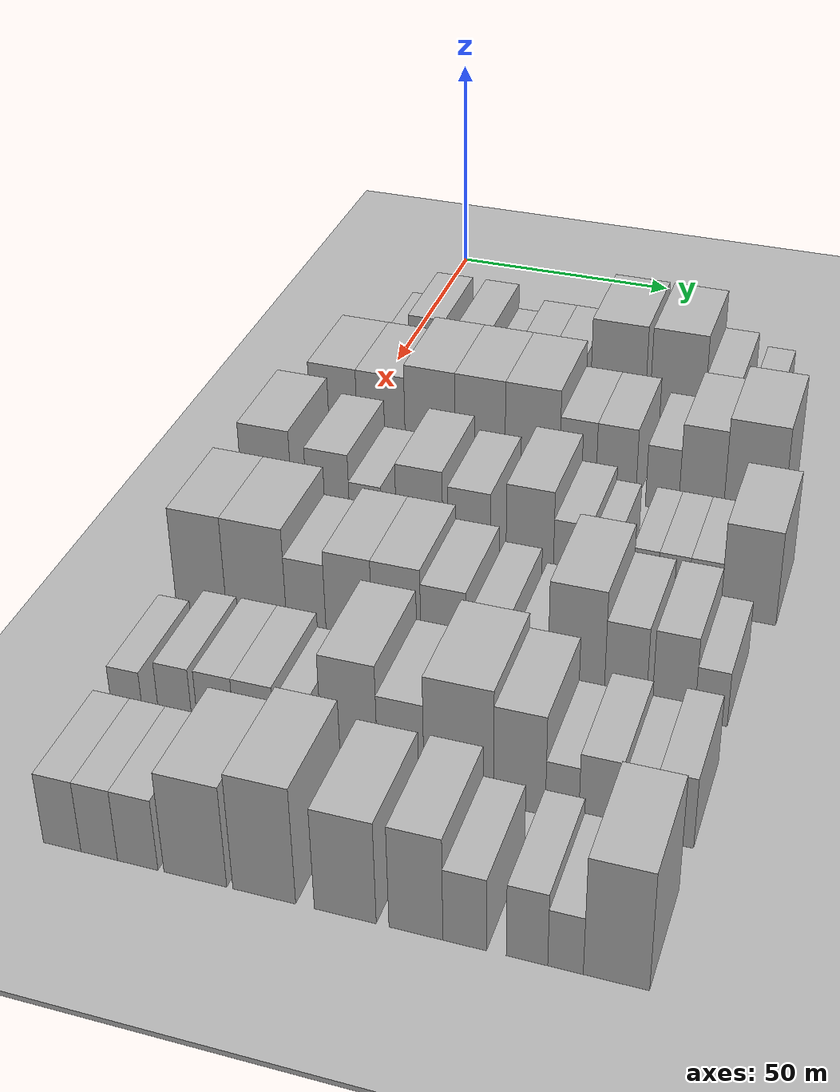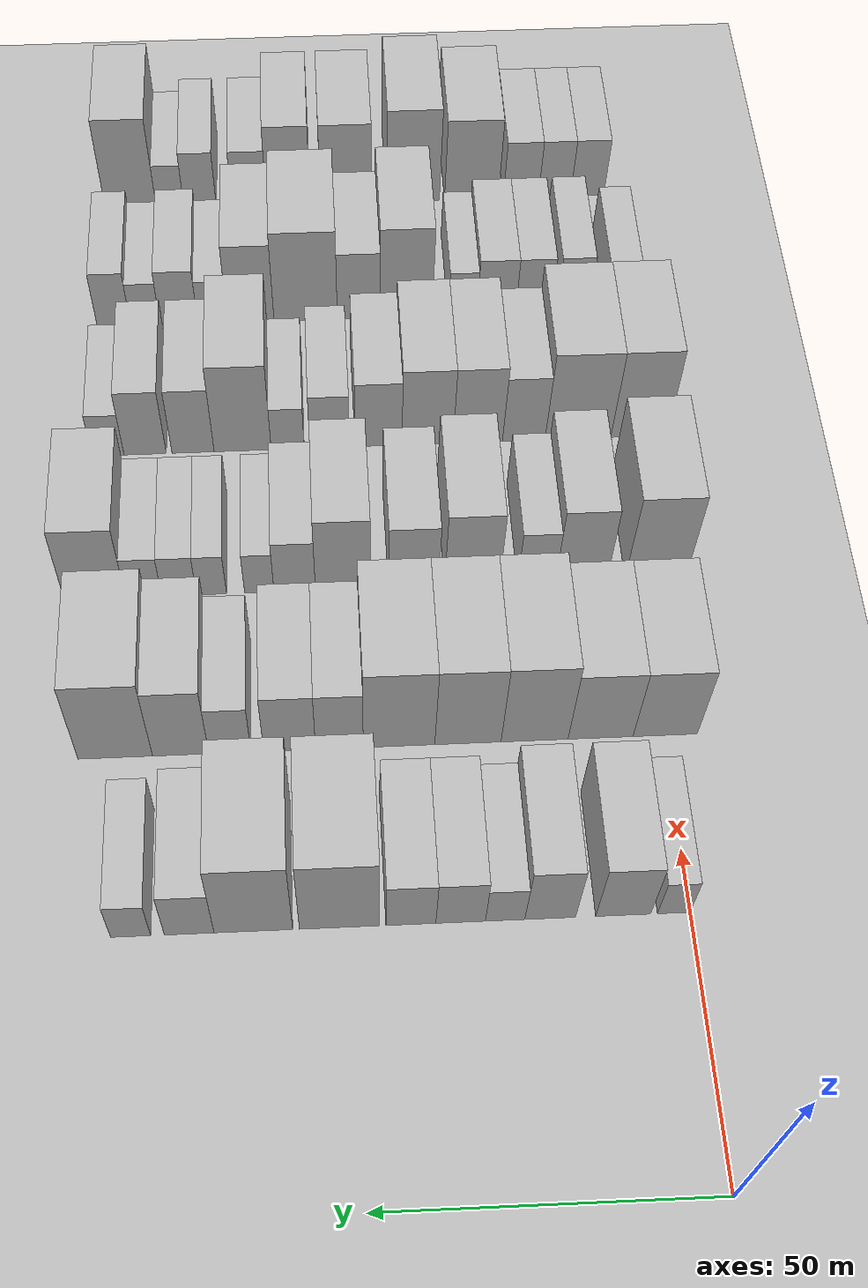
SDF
<sdf version="1.6">
 <world name="default">
  <include><name>ground_plane_1</name><uri>model://HANNAS_ground_plane</uri></include>
  <include>
   <name>ground_plane_2</name>
   <uri>model://HANNAS_ground_plane</uri>
   <pose>100 0 0  0 0 0</pose>
  </include>
  <model name="building_60">
   <static>1</static>
   <pose>50.0000 2.6766 0 0.000000 0.000000 0.000000</pose>
   <link name="link">
    <pose>0 0 6.00 0 0 0</pose>
    <collision name="collision"><geometry><box><size>20.0000 4.8449 12.0000</size></box></geometry></collision>
    <visual name="visual">
     <cast_shadows>0</cast_shadows>
     <geometry><box><size>20.0000 4.8449 12.0000</size></box></geometry>
     <material>
      <script>
       <uri>model://HANNAS_wall/materials/scripts</uri>
       <uri>model://HANNAS_wall/materials/textures</uri>
       <name>vrc/HANNAS_wall</name>
      </script>
     </material>
    </visual>
   </link>
  </model>
  <model name="building_61">
   <static>1</static>
   <pose>50.0000 10.2026 0 0.000000 0.000000 0.000000</pose>
   <link name="link">
    <pose>0 0 9.00 0 0 0</pose>
    <collision name="collision"><geometry><box><size>20.0000 8.2070 18.0000</size></box></geometry></collision>
    <visual name="visual">
     <cast_shadows>0</cast_shadows>
     <geometry><box><size>20.0000 8.2070 18.0000</size></box></geometry>
     <material>
      <script>
       <uri>model://HANNAS_wall/materials/scripts</uri>
       <uri>model://HANNAS_wall/materials/textures</uri>
       <name>vrc/HANNAS_wall</name>
      </script>
     </material>
    </visual>
   </link>
  </model>
  <model name="building_62">
   <static>1</static>
   <pose>50.0000 21.0851 0 0.000000 0.000000 0.000000</pose>
   <link name="link">
    <pose>0 0 9.00 0 0 0</pose>
    <collision name="collision"><geometry><box><size>20.0000 7.5580 18.0000</size></box></geometry></collision>
    <visual name="visual">
     <cast_shadows>0</cast_shadows>
     <geometry><box><size>20.0000 7.5580 18.0000</size></box></geometry>
     <material>
      <script>
       <uri>model://HANNAS_wall/materials/scripts</uri>
       <uri>model://HANNAS_wall/materials/textures</uri>
       <name>vrc/HANNAS_wall</name>
      </script>
     </material>
    </visual>
   </link>
  </model>
  <model name="building_63">
   <static>1</static>
   <pose>50.0000 27.7892 0 0.000000 0.000000 0.000000</pose>
   <link name="link">
    <pose>0 0 6.00 0 0 0</pose>
    <collision name="collision"><geometry><box><size>20.0000 5.8502 12.0000</size></box></geometry></collision>
    <visual name="visual">
     <cast_shadows>0</cast_shadows>
     <geometry><box><size>20.0000 5.8502 12.0000</size></box></geometry>
     <material>
      <script>
       <uri>model://HANNAS_wall/materials/scripts</uri>
       <uri>model://HANNAS_wall/materials/textures</uri>
       <name>vrc/HANNAS_wall</name>
      </script>
     </material>
    </visual>
   </link>
  </model>
  <model name="building_64">
   <static>1</static>
   <pose>50.0000 34.3873 0 0.000000 0.000000 0.000000</pose>
   <link name="link">
    <pose>0 0 7.50 0 0 0</pose>
    <collision name="collision"><geometry><box><size>20.0000 7.3461 15.0000</size></box></geometry></collision>
    <visual name="visual">
     <cast_shadows>0</cast_shadows>
     <geometry><box><size>20.0000 7.3461 15.0000</size></box></geometry>
     <material>
      <script>
       <uri>model://HANNAS_wall/materials/scripts</uri>
       <uri>model://HANNAS_wall/materials/textures</uri>
       <name>vrc/HANNAS_wall</name>
      </script>
     </material>
    </visual>
   </link>
  </model>
  <model name="building_65">
   <static>1</static>
   <pose>50.0000 41.7558 0 0.000000 0.000000 0.000000</pose>
   <link name="link">
    <pose>0 0 7.50 0 0 0</pose>
    <collision name="collision"><geometry><box><size>20.0000 7.3909 15.0000</size></box></geometry></collision>
    <visual name="visual">
     <cast_shadows>0</cast_shadows>
     <geometry><box><size>20.0000 7.3909 15.0000</size></box></geometry>
     <material>
      <script>
       <uri>model://HANNAS_wall/materials/scripts</uri>
       <uri>model://HANNAS_wall/materials/textures</uri>
       <name>vrc/HANNAS_wall</name>
      </script>
     </material>
    </visual>
   </link>
  </model>
  <model name="building_66">
   <static>1</static>
   <pose>50.0000 52.3433 0 0.000000 0.000000 0.000000</pose>
   <link name="link">
    <pose>0 0 12.00 0 0 0</pose>
    <collision name="collision"><geometry><box><size>20.0000 11.7840 24.0000</size></box></geometry></collision>
    <visual name="visual">
     <cast_shadows>0</cast_shadows>
     <geometry><box><size>20.0000 11.7840 24.0000</size></box></geometry>
     <material>
      <script>
       <uri>model://HANNAS_wall/materials/scripts</uri>
       <uri>model://HANNAS_wall/materials/textures</uri>
       <name>vrc/HANNAS_wall</name>
      </script>
     </material>
    </visual>
   </link>
  </model>
  <model name="building_67">
   <static>1</static>
   <pose>50.0000 65.0348 0 0.000000 0.000000 0.000000</pose>
   <link name="link">
    <pose>0 0 12.00 0 0 0</pose>
    <collision name="collision"><geometry><box><size>20.0000 11.5989 24.0000</size></box></geometry></collision>
    <visual name="visual">
     <cast_shadows>0</cast_shadows>
     <geometry><box><size>20.0000 11.5989 24.0000</size></box></geometry>
     <material>
      <script>
       <uri>model://HANNAS_wall/materials/scripts</uri>
       <uri>model://HANNAS_wall/materials/textures</uri>
       <name>vrc/HANNAS_wall</name>
      </script>
     </material>
    </visual>
   </link>
  </model>
  <model name="building_68">
   <static>1</static>
   <pose>50.0000 74.4866 0 0.000000 0.000000 0.000000</pose>
   <link name="link">
    <pose>0 0 7.50 0 0 0</pose>
    <collision name="collision"><geometry><box><size>20.0000 7.3048 15.0000</size></box></geometry></collision>
    <visual name="visual">
     <cast_shadows>0</cast_shadows>
     <geometry><box><size>20.0000 7.3048 15.0000</size></box></geometry>
     <material>
      <script>
       <uri>model://HANNAS_wall/materials/scripts</uri>
       <uri>model://HANNAS_wall/materials/textures</uri>
       <name>vrc/HANNAS_wall</name>
      </script>
     </material>
    </visual>
   </link>
  </model>
  <model name="building_69">
   <static>1</static>
   <pose>50.0000 83.0886 0 0.000000 0.000000 0.000000</pose>
   <link name="link">
    <pose>0 0 6.00 0 0 0</pose>
    <collision name="collision"><geometry><box><size>20.0000 5.8993 12.0000</size></box></geometry></collision>
    <visual name="visual">
     <cast_shadows>0</cast_shadows>
     <geometry><box><size>20.0000 5.8993 12.0000</size></box></geometry>
     <material>
      <script>
       <uri>model://HANNAS_wall/materials/scripts</uri>
       <uri>model://HANNAS_wall/materials/textures</uri>
       <name>vrc/HANNAS_wall</name>
      </script>
     </material>
    </visual>
   </link>
  </model>
  <model name="building_178">
   <static>1</static>
   <pose>79.0000 -0.0719 0 0.000000 0.000000 0.000000</pose>
   <link name="link">
    <pose>0 0 10.50 0 0 0</pose>
    <collision name="collision"><geometry><box><size>20.0000 10.2089 21.0000</size></box></geometry></collision>
    <visual name="visual">
     <cast_shadows>0</cast_shadows>
     <geometry><box><size>20.0000 10.2089 21.0000</size></box></geometry>
     <material>
      <script>
       <uri>model://HANNAS_wall/materials/scripts</uri>
       <uri>model://HANNAS_wall/materials/textures</uri>
       <name>vrc/HANNAS_wall</name>
      </script>
     </material>
    </visual>
   </link>
  </model>
  <model name="building_179">
   <static>1</static>
   <pose>79.0000 10.1699 0 0.000000 0.000000 0.000000</pose>
   <link name="link">
    <pose>0 0 10.50 0 0 0</pose>
    <collision name="collision"><geometry><box><size>20.0000 10.2747 21.0000</size></box></geometry></collision>
    <visual name="visual">
     <cast_shadows>0</cast_shadows>
     <geometry><box><size>20.0000 10.2747 21.0000</size></box></geometry>
     <material>
      <script>
       <uri>model://HANNAS_wall/materials/scripts</uri>
       <uri>model://HANNAS_wall/materials/textures</uri>
       <name>vrc/HANNAS_wall</name>
      </script>
     </material>
    </visual>
   </link>
  </model>
  <model name="building_180">
   <static>1</static>
   <pose>79.0000 20.6007 0 0.000000 0.000000 0.000000</pose>
   <link name="link">
    <pose>0 0 12.00 0 0 0</pose>
    <collision name="collision"><geometry><box><size>20.0000 10.5871 24.0000</size></box></geometry></collision>
    <visual name="visual">
     <cast_shadows>0</cast_shadows>
     <geometry><box><size>20.0000 10.5871 24.0000</size></box></geometry>
     <material>
      <script>
       <uri>model://HANNAS_wall/materials/scripts</uri>
       <uri>model://HANNAS_wall/materials/textures</uri>
       <name>vrc/HANNAS_wall</name>
      </script>
     </material>
    </visual>
   </link>
  </model>
  <model name="building_181">
   <static>1</static>
   <pose>79.0000 31.1213 0 0.000000 0.000000 0.000000</pose>
   <link name="link">
    <pose>0 0 12.00 0 0 0</pose>
    <collision name="collision"><geometry><box><size>20.0000 10.4541 24.0000</size></box></geometry></collision>
    <visual name="visual">
     <cast_shadows>0</cast_shadows>
     <geometry><box><size>20.0000 10.4541 24.0000</size></box></geometry>
     <material>
      <script>
       <uri>model://HANNAS_wall/materials/scripts</uri>
       <uri>model://HANNAS_wall/materials/textures</uri>
       <name>vrc/HANNAS_wall</name>
      </script>
     </material>
    </visual>
   </link>
  </model>
  <model name="building_182">
   <static>1</static>
   <pose>79.0000 41.9779 0 0.000000 0.000000 0.000000</pose>
   <link name="link">
    <pose>0 0 12.00 0 0 0</pose>
    <collision name="collision"><geometry><box><size>20.0000 11.2591 24.0000</size></box></geometry></collision>
    <visual name="visual">
     <cast_shadows>0</cast_shadows>
     <geometry><box><size>20.0000 11.2591 24.0000</size></box></geometry>
     <material>
      <script>
       <uri>model://HANNAS_wall/materials/scripts</uri>
       <uri>model://HANNAS_wall/materials/textures</uri>
       <name>vrc/HANNAS_wall</name>
      </script>
     </material>
    </visual>
   </link>
  </model>
  <model name="building_183">
   <static>1</static>
   <pose>79.0000 51.3438 0 0.000000 0.000000 0.000000</pose>
   <link name="link">
    <pose>0 0 9.00 0 0 0</pose>
    <collision name="collision"><geometry><box><size>20.0000 7.4727 18.0000</size></box></geometry></collision>
    <visual name="visual">
     <cast_shadows>0</cast_shadows>
     <geometry><box><size>20.0000 7.4727 18.0000</size></box></geometry>
     <material>
      <script>
       <uri>model://HANNAS_wall/materials/scripts</uri>
       <uri>model://HANNAS_wall/materials/textures</uri>
       <name>vrc/HANNAS_wall</name>
      </script>
     </material>
    </visual>
   </link>
  </model>
  <model name="building_184">
   <static>1</static>
   <pose>79.0000 59.1383 0 0.000000 0.000000 0.000000</pose>
   <link name="link">
    <pose>0 0 9.00 0 0 0</pose>
    <collision name="collision"><geometry><box><size>20.0000 8.1164 18.0000</size></box></geometry></collision>
    <visual name="visual">
     <cast_shadows>0</cast_shadows>
     <geometry><box><size>20.0000 8.1164 18.0000</size></box></geometry>
     <material>
      <script>
       <uri>model://HANNAS_wall/materials/scripts</uri>
       <uri>model://HANNAS_wall/materials/textures</uri>
       <name>vrc/HANNAS_wall</name>
      </script>
     </material>
    </visual>
   </link>
  </model>
  <model name="building_185">
   <static>1</static>
   <pose>79.0000 68.4979 0 0.000000 0.000000 0.000000</pose>
   <link name="link">
    <pose>0 0 7.50 0 0 0</pose>
    <collision name="collision"><geometry><box><size>20.0000 6.6029 15.0000</size></box></geometry></collision>
    <visual name="visual">
     <cast_shadows>0</cast_shadows>
     <geometry><box><size>20.0000 6.6029 15.0000</size></box></geometry>
     <material>
      <script>
       <uri>model://HANNAS_wall/materials/scripts</uri>
       <uri>model://HANNAS_wall/materials/textures</uri>
       <name>vrc/HANNAS_wall</name>
      </script>
     </material>
    </visual>
   </link>
  </model>
  <model name="building_186">
   <static>1</static>
   <pose>79.0000 76.2071 0 0.000000 0.000000 0.000000</pose>
   <link name="link">
    <pose>0 0 10.50 0 0 0</pose>
    <collision name="collision"><geometry><box><size>20.0000 8.8154 21.0000</size></box></geometry></collision>
    <visual name="visual">
     <cast_shadows>0</cast_shadows>
     <geometry><box><size>20.0000 8.8154 21.0000</size></box></geometry>
     <material>
      <script>
       <uri>model://HANNAS_wall/materials/scripts</uri>
       <uri>model://HANNAS_wall/materials/textures</uri>
       <name>vrc/HANNAS_wall</name>
      </script>
     </material>
    </visual>
   </link>
  </model>
  <model name="building_187">
   <static>1</static>
   <pose>79.0000 86.4348 0 0.000000 0.000000 0.000000</pose>
   <link name="link">
    <pose>0 0 12.00 0 0 0</pose>
    <collision name="collision"><geometry><box><size>20.0000 11.6401 24.0000</size></box></geometry></collision>
    <visual name="visual">
     <cast_shadows>0</cast_shadows>
     <geometry><box><size>20.0000 11.6401 24.0000</size></box></geometry>
     <material>
      <script>
       <uri>model://HANNAS_wall/materials/scripts</uri>
       <uri>model://HANNAS_wall/materials/textures</uri>
       <name>vrc/HANNAS_wall</name>
      </script>
     </material>
    </visual>
   </link>
  </model>
  <model name="building_288">
   <static>1</static>
   <pose>108.0000 -2.4925 0 0.000000 0.000000 0.000000</pose>
   <link name="link">
    <pose>0 0 12.00 0 0 0</pose>
    <collision name="collision"><geometry><box><size>20.0000 10.2999 24.0000</size></box></geometry></collision>
    <visual name="visual">
     <cast_shadows>0</cast_shadows>
     <geometry><box><size>20.0000 10.2999 24.0000</size></box></geometry>
     <material>
      <script>
       <uri>model://HANNAS_wall/materials/scripts</uri>
       <uri>model://HANNAS_wall/materials/textures</uri>
       <name>vrc/HANNAS_wall</name>
      </script>
     </material>
    </visual>
   </link>
  </model>
  <model name="building_289">
   <static>1</static>
   <pose>108.0000 9.9917 0 0.000000 0.000000 0.000000</pose>
   <link name="link">
    <pose>0 0 10.50 0 0 0</pose>
    <collision name="collision"><geometry><box><size>20.0000 8.6685 21.0000</size></box></geometry></collision>
    <visual name="visual">
     <cast_shadows>0</cast_shadows>
     <geometry><box><size>20.0000 8.6685 21.0000</size></box></geometry>
     <material>
      <script>
       <uri>model://HANNAS_wall/materials/scripts</uri>
       <uri>model://HANNAS_wall/materials/textures</uri>
       <name>vrc/HANNAS_wall</name>
      </script>
     </material>
    </visual>
   </link>
  </model>
  <model name="building_290">
   <static>1</static>
   <pose>108.0000 17.4952 0 0.000000 0.000000 0.000000</pose>
   <link name="link">
    <pose>0 0 7.50 0 0 0</pose>
    <collision name="collision"><geometry><box><size>20.0000 6.3384 15.0000</size></box></geometry></collision>
    <visual name="visual">
     <cast_shadows>0</cast_shadows>
     <geometry><box><size>20.0000 6.3384 15.0000</size></box></geometry>
     <material>
      <script>
       <uri>model://HANNAS_wall/materials/scripts</uri>
       <uri>model://HANNAS_wall/materials/textures</uri>
       <name>vrc/HANNAS_wall</name>
      </script>
     </material>
    </visual>
   </link>
  </model>
  <model name="building_291">
   <static>1</static>
   <pose>108.0000 28.2611 0 0.000000 0.000000 0.000000</pose>
   <link name="link">
    <pose>0 0 10.50 0 0 0</pose>
    <collision name="collision"><geometry><box><size>20.0000 9.1934 21.0000</size></box></geometry></collision>
    <visual name="visual">
     <cast_shadows>0</cast_shadows>
     <geometry><box><size>20.0000 9.1934 21.0000</size></box></geometry>
     <material>
      <script>
       <uri>model://HANNAS_wall/materials/scripts</uri>
       <uri>model://HANNAS_wall/materials/textures</uri>
       <name>vrc/HANNAS_wall</name>
      </script>
     </material>
    </visual>
   </link>
  </model>
  <model name="building_292">
   <static>1</static>
   <pose>108.0000 38.0332 0 0.000000 0.000000 0.000000</pose>
   <link name="link">
    <pose>0 0 9.00 0 0 0</pose>
    <collision name="collision"><geometry><box><size>20.0000 8.3508 18.0000</size></box></geometry></collision>
    <visual name="visual">
     <cast_shadows>0</cast_shadows>
     <geometry><box><size>20.0000 8.3508 18.0000</size></box></geometry>
     <material>
      <script>
       <uri>model://HANNAS_wall/materials/scripts</uri>
       <uri>model://HANNAS_wall/materials/textures</uri>
       <name>vrc/HANNAS_wall</name>
      </script>
     </material>
    </visual>
   </link>
  </model>
  <model name="building_293">
   <static>1</static>
   <pose>108.0000 49.7743 0 0.000000 0.000000 0.000000</pose>
   <link name="link">
    <pose>0 0 10.50 0 0 0</pose>
    <collision name="collision"><geometry><box><size>20.0000 9.1314 21.0000</size></box></geometry></collision>
    <visual name="visual">
     <cast_shadows>0</cast_shadows>
     <geometry><box><size>20.0000 9.1314 21.0000</size></box></geometry>
     <material>
      <script>
       <uri>model://HANNAS_wall/materials/scripts</uri>
       <uri>model://HANNAS_wall/materials/textures</uri>
       <name>vrc/HANNAS_wall</name>
      </script>
     </material>
    </visual>
   </link>
  </model>
  <model name="building_294">
   <static>1</static>
   <pose>108.0000 57.7836 0 0.000000 0.000000 0.000000</pose>
   <link name="link">
    <pose>0 0 7.50 0 0 0</pose>
    <collision name="collision"><geometry><box><size>20.0000 6.8871 15.0000</size></box></geometry></collision>
    <visual name="visual">
     <cast_shadows>0</cast_shadows>
     <geometry><box><size>20.0000 6.8871 15.0000</size></box></geometry>
     <material>
      <script>
       <uri>model://HANNAS_wall/materials/scripts</uri>
       <uri>model://HANNAS_wall/materials/textures</uri>
       <name>vrc/HANNAS_wall</name>
      </script>
     </material>
    </visual>
   </link>
  </model>
  <model name="building_295">
   <static>1</static>
   <pose>108.0000 63.6562 0 0.000000 0.000000 0.000000</pose>
   <link name="link">
    <pose>0 0 6.00 0 0 0</pose>
    <collision name="collision"><geometry><box><size>20.0000 4.8583 12.0000</size></box></geometry></collision>
    <visual name="visual">
     <cast_shadows>0</cast_shadows>
     <geometry><box><size>20.0000 4.8583 12.0000</size></box></geometry>
     <material>
      <script>
       <uri>model://HANNAS_wall/materials/scripts</uri>
       <uri>model://HANNAS_wall/materials/textures</uri>
       <name>vrc/HANNAS_wall</name>
      </script>
     </material>
    </visual>
   </link>
  </model>
  <model name="building_296">
   <static>1</static>
   <pose>108.0000 71.5731 0 0.000000 0.000000 0.000000</pose>
   <link name="link">
    <pose>0 0 6.00 0 0 0</pose>
    <collision name="collision"><geometry><box><size>20.0000 4.9755 12.0000</size></box></geometry></collision>
    <visual name="visual">
     <cast_shadows>0</cast_shadows>
     <geometry><box><size>20.0000 4.9755 12.0000</size></box></geometry>
     <material>
      <script>
       <uri>model://HANNAS_wall/materials/scripts</uri>
       <uri>model://HANNAS_wall/materials/textures</uri>
       <name>vrc/HANNAS_wall</name>
      </script>
     </material>
    </visual>
   </link>
  </model>
  <model name="building_297">
   <static>1</static>
   <pose>108.0000 76.9501 0 0.000000 0.000000 0.000000</pose>
   <link name="link">
    <pose>0 0 6.00 0 0 0</pose>
    <collision name="collision"><geometry><box><size>20.0000 5.7784 12.0000</size></box></geometry></collision>
    <visual name="visual">
     <cast_shadows>0</cast_shadows>
     <geometry><box><size>20.0000 5.7784 12.0000</size></box></geometry>
     <material>
      <script>
       <uri>model://HANNAS_wall/materials/scripts</uri>
       <uri>model://HANNAS_wall/materials/textures</uri>
       <name>vrc/HANNAS_wall</name>
      </script>
     </material>
    </visual>
   </link>
  </model>
  <model name="building_298">
   <static>1</static>
   <pose>108.0000 82.8133 0 0.000000 0.000000 0.000000</pose>
   <link name="link">
    <pose>0 0 6.00 0 0 0</pose>
    <collision name="collision"><geometry><box><size>20.0000 5.9481 12.0000</size></box></geometry></collision>
    <visual name="visual">
     <cast_shadows>0</cast_shadows>
     <geometry><box><size>20.0000 5.9481 12.0000</size></box></geometry>
     <material>
      <script>
       <uri>model://HANNAS_wall/materials/scripts</uri>
       <uri>model://HANNAS_wall/materials/textures</uri>
       <name>vrc/HANNAS_wall</name>
      </script>
     </material>
    </visual>
   </link>
  </model>
  <model name="building_299">
   <static>1</static>
   <pose>108.0000 90.8705 0 0.000000 0.000000 0.000000</pose>
   <link name="link">
    <pose>0 0 10.50 0 0 0</pose>
    <collision name="collision"><geometry><box><size>20.0000 10.1663 21.0000</size></box></geometry></collision>
    <visual name="visual">
     <cast_shadows>0</cast_shadows>
     <geometry><box><size>20.0000 10.1663 21.0000</size></box></geometry>
     <material>
      <script>
       <uri>model://HANNAS_wall/materials/scripts</uri>
       <uri>model://HANNAS_wall/materials/textures</uri>
       <name>vrc/HANNAS_wall</name>
      </script>
     </material>
    </visual>
   </link>
  </model>
  <model name="building_405">
   <static>1</static>
   <pose>137.0000 -3.4416 0 0.000000 0.000000 0.000000</pose>
   <link name="link">
    <pose>0 0 12.00 0 0 0</pose>
    <collision name="collision"><geometry><box><size>20.0000 9.9246 24.0000</size></box></geometry></collision>
    <visual name="visual">
     <cast_shadows>0</cast_shadows>
     <geometry><box><size>20.0000 9.9246 24.0000</size></box></geometry>
     <material>
      <script>
       <uri>model://HANNAS_wall/materials/scripts</uri>
       <uri>model://HANNAS_wall/materials/textures</uri>
       <name>vrc/HANNAS_wall</name>
      </script>
     </material>
    </visual>
   </link>
  </model>
  <model name="building_406">
   <static>1</static>
   <pose>137.0000 7.3439 0 0.000000 0.000000 0.000000</pose>
   <link name="link">
    <pose>0 0 12.00 0 0 0</pose>
    <collision name="collision"><geometry><box><size>20.0000 11.6464 24.0000</size></box></geometry></collision>
    <visual name="visual">
     <cast_shadows>0</cast_shadows>
     <geometry><box><size>20.0000 11.6464 24.0000</size></box></geometry>
     <material>
      <script>
       <uri>model://HANNAS_wall/materials/scripts</uri>
       <uri>model://HANNAS_wall/materials/textures</uri>
       <name>vrc/HANNAS_wall</name>
      </script>
     </material>
    </visual>
   </link>
  </model>
  <model name="building_407">
   <static>1</static>
   <pose>137.0000 16.9198 0 0.000000 0.000000 0.000000</pose>
   <link name="link">
    <pose>0 0 9.00 0 0 0</pose>
    <collision name="collision"><geometry><box><size>20.0000 7.5053 18.0000</size></box></geometry></collision>
    <visual name="visual">
     <cast_shadows>0</cast_shadows>
     <geometry><box><size>20.0000 7.5053 18.0000</size></box></geometry>
     <material>
      <script>
       <uri>model://HANNAS_wall/materials/scripts</uri>
       <uri>model://HANNAS_wall/materials/textures</uri>
       <name>vrc/HANNAS_wall</name>
      </script>
     </material>
    </visual>
   </link>
  </model>
  <model name="building_408">
   <static>1</static>
   <pose>137.0000 25.0241 0 0.000000 0.000000 0.000000</pose>
   <link name="link">
    <pose>0 0 10.50 0 0 0</pose>
    <collision name="collision"><geometry><box><size>20.0000 8.7033 21.0000</size></box></geometry></collision>
    <visual name="visual">
     <cast_shadows>0</cast_shadows>
     <geometry><box><size>20.0000 8.7033 21.0000</size></box></geometry>
     <material>
      <script>
       <uri>model://HANNAS_wall/materials/scripts</uri>
       <uri>model://HANNAS_wall/materials/textures</uri>
       <name>vrc/HANNAS_wall</name>
      </script>
     </material>
    </visual>
   </link>
  </model>
  <model name="building_409">
   <static>1</static>
   <pose>137.0000 33.8945 0 0.000000 0.000000 0.000000</pose>
   <link name="link">
    <pose>0 0 10.50 0 0 0</pose>
    <collision name="collision"><geometry><box><size>20.0000 9.0375 21.0000</size></box></geometry></collision>
    <visual name="visual">
     <cast_shadows>0</cast_shadows>
     <geometry><box><size>20.0000 9.0375 21.0000</size></box></geometry>
     <material>
      <script>
       <uri>model://HANNAS_wall/materials/scripts</uri>
       <uri>model://HANNAS_wall/materials/textures</uri>
       <name>vrc/HANNAS_wall</name>
      </script>
     </material>
    </visual>
   </link>
  </model>
  <model name="building_410">
   <static>1</static>
   <pose>137.0000 42.5134 0 0.000000 0.000000 0.000000</pose>
   <link name="link">
    <pose>0 0 9.00 0 0 0</pose>
    <collision name="collision"><geometry><box><size>20.0000 8.2002 18.0000</size></box></geometry></collision>
    <visual name="visual">
     <cast_shadows>0</cast_shadows>
     <geometry><box><size>20.0000 8.2002 18.0000</size></box></geometry>
     <material>
      <script>
       <uri>model://HANNAS_wall/materials/scripts</uri>
       <uri>model://HANNAS_wall/materials/textures</uri>
       <name>vrc/HANNAS_wall</name>
      </script>
     </material>
    </visual>
   </link>
  </model>
  <model name="building_411">
   <static>1</static>
   <pose>137.0000 51.0829 0 0.000000 0.000000 0.000000</pose>
   <link name="link">
    <pose>0 0 7.50 0 0 0</pose>
    <collision name="collision"><geometry><box><size>20.0000 6.9388 15.0000</size></box></geometry></collision>
    <visual name="visual">
     <cast_shadows>0</cast_shadows>
     <geometry><box><size>20.0000 6.9388 15.0000</size></box></geometry>
     <material>
      <script>
       <uri>model://HANNAS_wall/materials/scripts</uri>
       <uri>model://HANNAS_wall/materials/textures</uri>
       <name>vrc/HANNAS_wall</name>
      </script>
     </material>
    </visual>
   </link>
  </model>
  <model name="building_412">
   <static>1</static>
   <pose>137.0000 58.4448 0 0.000000 0.000000 0.000000</pose>
   <link name="link">
    <pose>0 0 6.00 0 0 0</pose>
    <collision name="collision"><geometry><box><size>20.0000 5.7850 12.0000</size></box></geometry></collision>
    <visual name="visual">
     <cast_shadows>0</cast_shadows>
     <geometry><box><size>20.0000 5.7850 12.0000</size></box></geometry>
     <material>
      <script>
       <uri>model://HANNAS_wall/materials/scripts</uri>
       <uri>model://HANNAS_wall/materials/textures</uri>
       <name>vrc/HANNAS_wall</name>
      </script>
     </material>
    </visual>
   </link>
  </model>
  <model name="building_413">
   <static>1</static>
   <pose>137.0000 66.3327 0 0.000000 0.000000 0.000000</pose>
   <link name="link">
    <pose>0 0 12.00 0 0 0</pose>
    <collision name="collision"><geometry><box><size>20.0000 9.9907 24.0000</size></box></geometry></collision>
    <visual name="visual">
     <cast_shadows>0</cast_shadows>
     <geometry><box><size>20.0000 9.9907 24.0000</size></box></geometry>
     <material>
      <script>
       <uri>model://HANNAS_wall/materials/scripts</uri>
       <uri>model://HANNAS_wall/materials/textures</uri>
       <name>vrc/HANNAS_wall</name>
      </script>
     </material>
    </visual>
   </link>
  </model>
  <model name="building_414">
   <static>1</static>
   <pose>137.0000 75.0126 0 0.000000 0.000000 0.000000</pose>
   <link name="link">
    <pose>0 0 9.00 0 0 0</pose>
    <collision name="collision"><geometry><box><size>20.0000 7.3691 18.0000</size></box></geometry></collision>
    <visual name="visual">
     <cast_shadows>0</cast_shadows>
     <geometry><box><size>20.0000 7.3691 18.0000</size></box></geometry>
     <material>
      <script>
       <uri>model://HANNAS_wall/materials/scripts</uri>
       <uri>model://HANNAS_wall/materials/textures</uri>
       <name>vrc/HANNAS_wall</name>
      </script>
     </material>
    </visual>
   </link>
  </model>
  <model name="building_415">
   <static>1</static>
   <pose>137.0000 83.3868 0 0.000000 0.000000 0.000000</pose>
   <link name="link">
    <pose>0 0 9.00 0 0 0</pose>
    <collision name="collision"><geometry><box><size>20.0000 7.3793 18.0000</size></box></geometry></collision>
    <visual name="visual">
     <cast_shadows>0</cast_shadows>
     <geometry><box><size>20.0000 7.3793 18.0000</size></box></geometry>
     <material>
      <script>
       <uri>model://HANNAS_wall/materials/scripts</uri>
       <uri>model://HANNAS_wall/materials/textures</uri>
       <name>vrc/HANNAS_wall</name>
      </script>
     </material>
    </visual>
   </link>
  </model>
  <model name="building_416">
   <static>1</static>
   <pose>137.0000 89.8727 0 0.000000 0.000000 0.000000</pose>
   <link name="link">
    <pose>0 0 6.00 0 0 0</pose>
    <collision name="collision"><geometry><box><size>20.0000 5.5925 12.0000</size></box></geometry></collision>
    <visual name="visual">
     <cast_shadows>0</cast_shadows>
     <geometry><box><size>20.0000 5.5925 12.0000</size></box></geometry>
     <material>
      <script>
       <uri>model://HANNAS_wall/materials/scripts</uri>
       <uri>model://HANNAS_wall/materials/textures</uri>
       <name>vrc/HANNAS_wall</name>
      </script>
     </material>
    </visual>
   </link>
  </model>
  <model name="building_511">
   <static>1</static>
   <pose>166.0000 -3.8062 0 0.000000 0.000000 0.000000</pose>
   <link name="link">
    <pose>0 0 6.00 0 0 0</pose>
    <collision name="collision"><geometry><box><size>20.0000 5.7771 12.0000</size></box></geometry></collision>
    <visual name="visual">
     <cast_shadows>0</cast_shadows>
     <geometry><box><size>20.0000 5.7771 12.0000</size></box></geometry>
     <material>
      <script>
       <uri>model://HANNAS_wall/materials/scripts</uri>
       <uri>model://HANNAS_wall/materials/textures</uri>
       <name>vrc/HANNAS_wall</name>
      </script>
     </material>
    </visual>
   </link>
  </model>
  <model name="building_512">
   <static>1</static>
   <pose>166.0000 5.1252 0 0.000000 0.000000 0.000000</pose>
   <link name="link">
    <pose>0 0 7.50 0 0 0</pose>
    <collision name="collision"><geometry><box><size>20.0000 6.0857 15.0000</size></box></geometry></collision>
    <visual name="visual">
     <cast_shadows>0</cast_shadows>
     <geometry><box><size>20.0000 6.0857 15.0000</size></box></geometry>
     <material>
      <script>
       <uri>model://HANNAS_wall/materials/scripts</uri>
       <uri>model://HANNAS_wall/materials/textures</uri>
       <name>vrc/HANNAS_wall</name>
      </script>
     </material>
    </visual>
   </link>
  </model>
  <model name="building_513">
   <static>1</static>
   <pose>166.0000 12.4668 0 0.000000 0.000000 0.000000</pose>
   <link name="link">
    <pose>0 0 7.50 0 0 0</pose>
    <collision name="collision"><geometry><box><size>20.0000 6.5975 15.0000</size></box></geometry></collision>
    <visual name="visual">
     <cast_shadows>0</cast_shadows>
     <geometry><box><size>20.0000 6.5975 15.0000</size></box></geometry>
     <material>
      <script>
       <uri>model://HANNAS_wall/materials/scripts</uri>
       <uri>model://HANNAS_wall/materials/textures</uri>
       <name>vrc/HANNAS_wall</name>
      </script>
     </material>
    </visual>
   </link>
  </model>
  <model name="building_514">
   <static>1</static>
   <pose>166.0000 19.3480 0 0.000000 0.000000 0.000000</pose>
   <link name="link">
    <pose>0 0 7.50 0 0 0</pose>
    <collision name="collision"><geometry><box><size>20.0000 7.1649 15.0000</size></box></geometry></collision>
    <visual name="visual">
     <cast_shadows>0</cast_shadows>
     <geometry><box><size>20.0000 7.1649 15.0000</size></box></geometry>
     <material>
      <script>
       <uri>model://HANNAS_wall/materials/scripts</uri>
       <uri>model://HANNAS_wall/materials/textures</uri>
       <name>vrc/HANNAS_wall</name>
      </script>
     </material>
    </visual>
   </link>
  </model>
  <model name="building_515">
   <static>1</static>
   <pose>166.0000 25.5775 0 0.000000 0.000000 0.000000</pose>
   <link name="link">
    <pose>0 0 6.00 0 0 0</pose>
    <collision name="collision"><geometry><box><size>20.0000 5.2941 12.0000</size></box></geometry></collision>
    <visual name="visual">
     <cast_shadows>0</cast_shadows>
     <geometry><box><size>20.0000 5.2941 12.0000</size></box></geometry>
     <material>
      <script>
       <uri>model://HANNAS_wall/materials/scripts</uri>
       <uri>model://HANNAS_wall/materials/textures</uri>
       <name>vrc/HANNAS_wall</name>
      </script>
     </material>
    </visual>
   </link>
  </model>
  <model name="building_516">
   <static>1</static>
   <pose>166.0000 36.0507 0 0.000000 0.000000 0.000000</pose>
   <link name="link">
    <pose>0 0 12.00 0 0 0</pose>
    <collision name="collision"><geometry><box><size>20.0000 9.6522 24.0000</size></box></geometry></collision>
    <visual name="visual">
     <cast_shadows>0</cast_shadows>
     <geometry><box><size>20.0000 9.6522 24.0000</size></box></geometry>
     <material>
      <script>
       <uri>model://HANNAS_wall/materials/scripts</uri>
       <uri>model://HANNAS_wall/materials/textures</uri>
       <name>vrc/HANNAS_wall</name>
      </script>
     </material>
    </visual>
   </link>
  </model>
  <model name="building_517">
   <static>1</static>
   <pose>166.0000 44.8219 0 0.000000 0.000000 0.000000</pose>
   <link name="link">
    <pose>0 0 9.00 0 0 0</pose>
    <collision name="collision"><geometry><box><size>20.0000 7.8901 18.0000</size></box></geometry></collision>
    <visual name="visual">
     <cast_shadows>0</cast_shadows>
     <geometry><box><size>20.0000 7.8901 18.0000</size></box></geometry>
     <material>
      <script>
       <uri>model://HANNAS_wall/materials/scripts</uri>
       <uri>model://HANNAS_wall/materials/textures</uri>
       <name>vrc/HANNAS_wall</name>
      </script>
     </material>
    </visual>
   </link>
  </model>
  <model name="building_518">
   <static>1</static>
   <pose>166.0000 54.6138 0 0.000000 0.000000 0.000000</pose>
   <link name="link">
    <pose>0 0 12.00 0 0 0</pose>
    <collision name="collision"><geometry><box><size>20.0000 11.6938 24.0000</size></box></geometry></collision>
    <visual name="visual">
     <cast_shadows>0</cast_shadows>
     <geometry><box><size>20.0000 11.6938 24.0000</size></box></geometry>
     <material>
      <script>
       <uri>model://HANNAS_wall/materials/scripts</uri>
       <uri>model://HANNAS_wall/materials/textures</uri>
       <name>vrc/HANNAS_wall</name>
      </script>
     </material>
    </visual>
   </link>
  </model>
  <model name="building_519">
   <static>1</static>
   <pose>166.0000 64.7450 0 0.000000 0.000000 0.000000</pose>
   <link name="link">
    <pose>0 0 10.50 0 0 0</pose>
    <collision name="collision"><geometry><box><size>20.0000 8.5684 21.0000</size></box></geometry></collision>
    <visual name="visual">
     <cast_shadows>0</cast_shadows>
     <geometry><box><size>20.0000 8.5684 21.0000</size></box></geometry>
     <material>
      <script>
       <uri>model://HANNAS_wall/materials/scripts</uri>
       <uri>model://HANNAS_wall/materials/textures</uri>
       <name>vrc/HANNAS_wall</name>
      </script>
     </material>
    </visual>
   </link>
  </model>
  <model name="building_520">
   <static>1</static>
   <pose>166.0000 71.7588 0 0.000000 0.000000 0.000000</pose>
   <link name="link">
    <pose>0 0 6.00 0 0 0</pose>
    <collision name="collision"><geometry><box><size>20.0000 5.4593 12.0000</size></box></geometry></collision>
    <visual name="visual">
     <cast_shadows>0</cast_shadows>
     <geometry><box><size>20.0000 5.4593 12.0000</size></box></geometry>
     <material>
      <script>
       <uri>model://HANNAS_wall/materials/scripts</uri>
       <uri>model://HANNAS_wall/materials/textures</uri>
       <name>vrc/HANNAS_wall</name>
      </script>
     </material>
    </visual>
   </link>
  </model>
  <model name="building_521">
   <static>1</static>
   <pose>166.0000 77.9499 0 0.000000 0.000000 0.000000</pose>
   <link name="link">
    <pose>0 0 7.50 0 0 0</pose>
    <collision name="collision"><geometry><box><size>20.0000 6.9229 15.0000</size></box></geometry></collision>
    <visual name="visual">
     <cast_shadows>0</cast_shadows>
     <geometry><box><size>20.0000 6.9229 15.0000</size></box></geometry>
     <material>
      <script>
       <uri>model://HANNAS_wall/materials/scripts</uri>
       <uri>model://HANNAS_wall/materials/textures</uri>
       <name>vrc/HANNAS_wall</name>
      </script>
     </material>
    </visual>
   </link>
  </model>
  <model name="building_522">
   <static>1</static>
   <pose>166.0000 84.1307 0 0.000000 0.000000 0.000000</pose>
   <link name="link">
    <pose>0 0 6.00 0 0 0</pose>
    <collision name="collision"><geometry><box><size>20.0000 5.4386 12.0000</size></box></geometry></collision>
    <visual name="visual">
     <cast_shadows>0</cast_shadows>
     <geometry><box><size>20.0000 5.4386 12.0000</size></box></geometry>
     <material>
      <script>
       <uri>model://HANNAS_wall/materials/scripts</uri>
       <uri>model://HANNAS_wall/materials/textures</uri>
       <name>vrc/HANNAS_wall</name>
      </script>
     </material>
    </visual>
   </link>
  </model>
  <model name="building_523">
   <static>1</static>
   <pose>166.0000 89.9075 0 0.000000 0.000000 0.000000</pose>
   <link name="link">
    <pose>0 0 7.50 0 0 0</pose>
    <collision name="collision"><geometry><box><size>20.0000 6.1150 15.0000</size></box></geometry></collision>
    <visual name="visual">
     <cast_shadows>0</cast_shadows>
     <geometry><box><size>20.0000 6.1150 15.0000</size></box></geometry>
     <material>
      <script>
       <uri>model://HANNAS_wall/materials/scripts</uri>
       <uri>model://HANNAS_wall/materials/textures</uri>
       <name>vrc/HANNAS_wall</name>
      </script>
     </material>
    </visual>
   </link>
  </model>
  <model name="building_631">
   <static>1</static>
   <pose>195.0000 -0.8594 0 0.000000 0.000000 0.000000</pose>
   <link name="link">
    <pose>0 0 7.50 0 0 0</pose>
    <collision name="collision"><geometry><box><size>20.0000 6.4885 15.0000</size></box></geometry></collision>
    <visual name="visual">
     <cast_shadows>0</cast_shadows>
     <geometry><box><size>20.0000 6.4885 15.0000</size></box></geometry>
     <material>
      <script>
       <uri>model://HANNAS_wall/materials/scripts</uri>
       <uri>model://HANNAS_wall/materials/textures</uri>
       <name>vrc/HANNAS_wall</name>
      </script>
     </material>
    </visual>
   </link>
  </model>
  <model name="building_632">
   <static>1</static>
   <pose>195.0000 5.5196 0 0.000000 0.000000 0.000000</pose>
   <link name="link">
    <pose>0 0 7.50 0 0 0</pose>
    <collision name="collision"><geometry><box><size>20.0000 6.2695 15.0000</size></box></geometry></collision>
    <visual name="visual">
     <cast_shadows>0</cast_shadows>
     <geometry><box><size>20.0000 6.2695 15.0000</size></box></geometry>
     <material>
      <script>
       <uri>model://HANNAS_wall/materials/scripts</uri>
       <uri>model://HANNAS_wall/materials/textures</uri>
       <name>vrc/HANNAS_wall</name>
      </script>
     </material>
    </visual>
   </link>
  </model>
  <model name="building_633">
   <static>1</static>
   <pose>195.0000 12.0750 0 0.000000 0.000000 0.000000</pose>
   <link name="link">
    <pose>0 0 7.50 0 0 0</pose>
    <collision name="collision"><geometry><box><size>20.0000 6.8413 15.0000</size></box></geometry></collision>
    <visual name="visual">
     <cast_shadows>0</cast_shadows>
     <geometry><box><size>20.0000 6.8413 15.0000</size></box></geometry>
     <material>
      <script>
       <uri>model://HANNAS_wall/materials/scripts</uri>
       <uri>model://HANNAS_wall/materials/textures</uri>
       <name>vrc/HANNAS_wall</name>
      </script>
     </material>
    </visual>
   </link>
  </model>
  <model name="building_634">
   <static>1</static>
   <pose>195.0000 21.7261 0 0.000000 0.000000 0.000000</pose>
   <link name="link">
    <pose>0 0 10.50 0 0 0</pose>
    <collision name="collision"><geometry><box><size>20.0000 10.4610 21.0000</size></box></geometry></collision>
    <visual name="visual">
     <cast_shadows>0</cast_shadows>
     <geometry><box><size>20.0000 10.4610 21.0000</size></box></geometry>
     <material>
      <script>
       <uri>model://HANNAS_wall/materials/scripts</uri>
       <uri>model://HANNAS_wall/materials/textures</uri>
       <name>vrc/HANNAS_wall</name>
      </script>
     </material>
    </visual>
   </link>
  </model>
  <model name="building_635">
   <static>1</static>
   <pose>195.0000 33.0850 0 0.000000 0.000000 0.000000</pose>
   <link name="link">
    <pose>0 0 12.00 0 0 0</pose>
    <collision name="collision"><geometry><box><size>20.0000 10.2567 24.0000</size></box></geometry></collision>
    <visual name="visual">
     <cast_shadows>0</cast_shadows>
     <geometry><box><size>20.0000 10.2567 24.0000</size></box></geometry>
     <material>
      <script>
       <uri>model://HANNAS_wall/materials/scripts</uri>
       <uri>model://HANNAS_wall/materials/textures</uri>
       <name>vrc/HANNAS_wall</name>
      </script>
     </material>
    </visual>
   </link>
  </model>
  <model name="building_636">
   <static>1</static>
   <pose>195.0000 46.1465 0 0.000000 0.000000 0.000000</pose>
   <link name="link">
    <pose>0 0 10.50 0 0 0</pose>
    <collision name="collision"><geometry><box><size>20.0000 9.8662 21.0000</size></box></geometry></collision>
    <visual name="visual">
     <cast_shadows>0</cast_shadows>
     <geometry><box><size>20.0000 9.8662 21.0000</size></box></geometry>
     <material>
      <script>
       <uri>model://HANNAS_wall/materials/scripts</uri>
       <uri>model://HANNAS_wall/materials/textures</uri>
       <name>vrc/HANNAS_wall</name>
      </script>
     </material>
    </visual>
   </link>
  </model>
  <model name="building_637">
   <static>1</static>
   <pose>195.0000 57.2881 0 0.000000 0.000000 0.000000</pose>
   <link name="link">
    <pose>0 0 10.50 0 0 0</pose>
    <collision name="collision"><geometry><box><size>20.0000 8.4171 21.0000</size></box></geometry></collision>
    <visual name="visual">
     <cast_shadows>0</cast_shadows>
     <geometry><box><size>20.0000 8.4171 21.0000</size></box></geometry>
     <material>
      <script>
       <uri>model://HANNAS_wall/materials/scripts</uri>
       <uri>model://HANNAS_wall/materials/textures</uri>
       <name>vrc/HANNAS_wall</name>
      </script>
     </material>
    </visual>
   </link>
  </model>
  <model name="building_638">
   <static>1</static>
   <pose>195.0000 64.8579 0 0.000000 0.000000 0.000000</pose>
   <link name="link">
    <pose>0 0 7.50 0 0 0</pose>
    <collision name="collision"><geometry><box><size>20.0000 6.7226 15.0000</size></box></geometry></collision>
    <visual name="visual">
     <cast_shadows>0</cast_shadows>
     <geometry><box><size>20.0000 6.7226 15.0000</size></box></geometry>
     <material>
      <script>
       <uri>model://HANNAS_wall/materials/scripts</uri>
       <uri>model://HANNAS_wall/materials/textures</uri>
       <name>vrc/HANNAS_wall</name>
      </script>
     </material>
    </visual>
   </link>
  </model>
  <model name="building_639">
   <static>1</static>
   <pose>195.0000 74.3561 0 0.000000 0.000000 0.000000</pose>
   <link name="link">
    <pose>0 0 7.50 0 0 0</pose>
    <collision name="collision"><geometry><box><size>20.0000 6.2736 15.0000</size></box></geometry></collision>
    <visual name="visual">
     <cast_shadows>0</cast_shadows>
     <geometry><box><size>20.0000 6.2736 15.0000</size></box></geometry>
     <material>
      <script>
       <uri>model://HANNAS_wall/materials/scripts</uri>
       <uri>model://HANNAS_wall/materials/textures</uri>
       <name>vrc/HANNAS_wall</name>
      </script>
     </material>
    </visual>
   </link>
  </model>
  <model name="building_640">
   <static>1</static>
   <pose>195.0000 80.1553 0 0.000000 0.000000 0.000000</pose>
   <link name="link">
    <pose>0 0 6.00 0 0 0</pose>
    <collision name="collision"><geometry><box><size>20.0000 5.3247 12.0000</size></box></geometry></collision>
    <visual name="visual">
     <cast_shadows>0</cast_shadows>
     <geometry><box><size>20.0000 5.3247 12.0000</size></box></geometry>
     <material>
      <script>
       <uri>model://HANNAS_wall/materials/scripts</uri>
       <uri>model://HANNAS_wall/materials/textures</uri>
       <name>vrc/HANNAS_wall</name>
      </script>
     </material>
    </visual>
   </link>
  </model>
  <model name="building_641">
   <static>1</static>
   <pose>195.0000 87.7149 0 0.000000 0.000000 0.000000</pose>
   <link name="link">
    <pose>0 0 12.00 0 0 0</pose>
    <collision name="collision"><geometry><box><size>20.0000 9.7945 24.0000</size></box></geometry></collision>
    <visual name="visual">
     <cast_shadows>0</cast_shadows>
     <geometry><box><size>20.0000 9.7945 24.0000</size></box></geometry>
     <material>
      <script>
       <uri>model://HANNAS_wall/materials/scripts</uri>
       <uri>model://HANNAS_wall/materials/textures</uri>
       <name>vrc/HANNAS_wall</name>
      </script>
     </material>
    </visual>
   </link>
  </model>
 </world>
</sdf>
